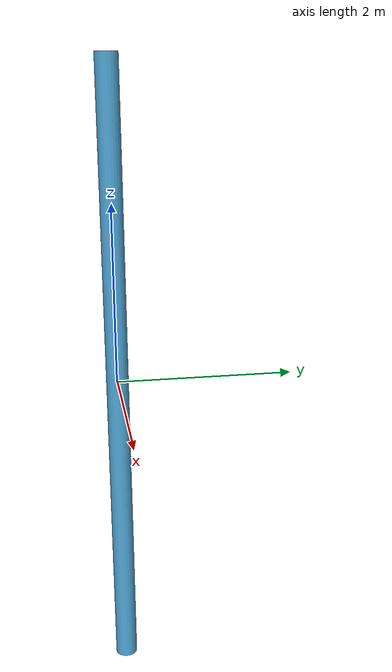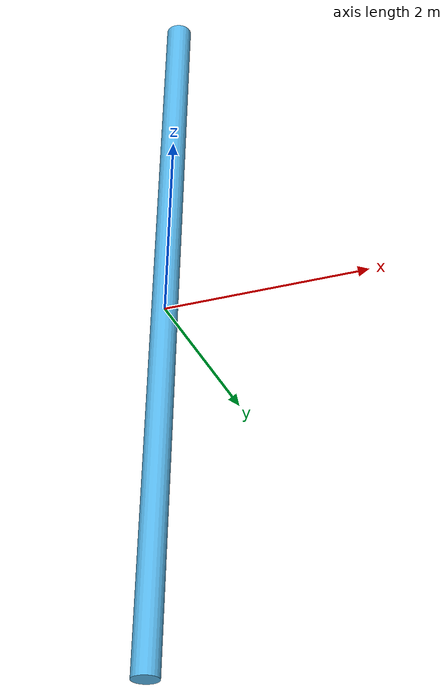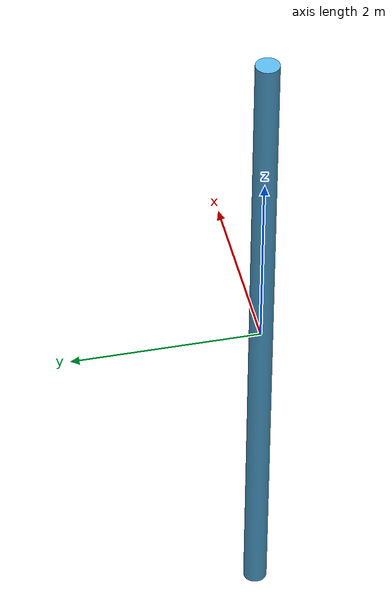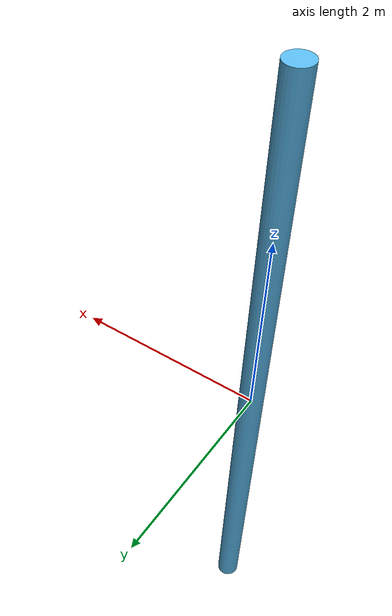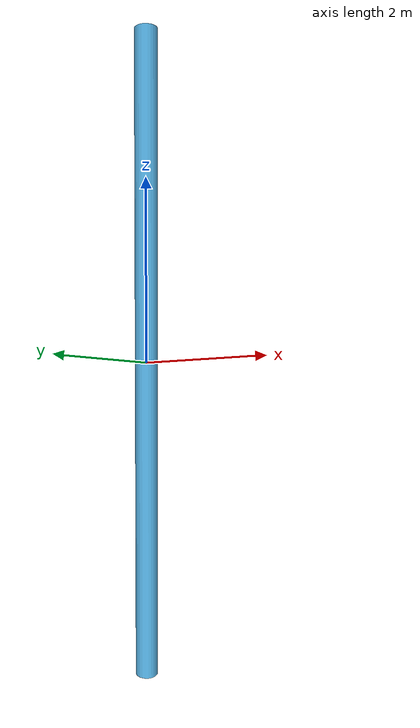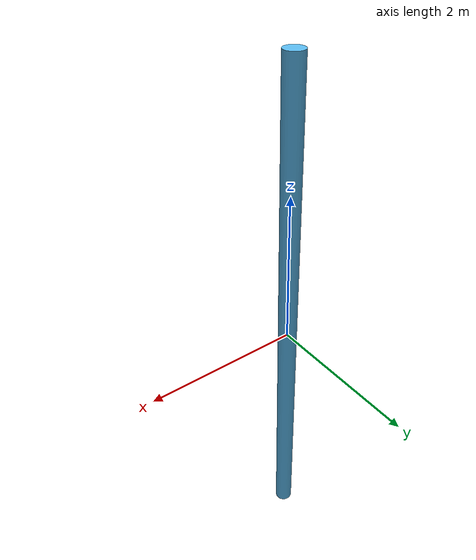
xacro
<?xml version="1.0"?>
<robot xmlns:xacro="http://www.ros.org/wiki/xacro" name="cylinder">

    <xacro:property name="sqrt2" value="1.41421356237" />

    <xacro:property name="radius" value="0.125" />
    <xacro:property name="length" value="${5 * sqrt2}" />
    <xacro:property name="m" value="1" />

    <!-- Wrap the entire robot definition in a macro -->
    <xacro:macro name="cylinder" params="xyz rpy">
        <link name="world"/>

        <link name="base">
            <visual>
                <origin xyz="0 0 0" rpy="0 0 0"/>
                <geometry>
                    <cylinder radius="${radius}" length="${length}"/>
                </geometry>
            </visual>
            <collision>
                <origin xyz="0 0 0" rpy="0 0 0"/>
                <geometry>
                    <cylinder radius="${radius}" length="${length}"/>
                </geometry>
            </collision>
            <inertial>
                <origin xyz="0 0 0" rpy="0 0 0"/>
                <mass value="${m}" />
                <inertia ixx="${1.0/12.0 * m * (3 * radius*radius + length*length)}"
                        ixy="0.0" ixz="0.0"
                        iyy="${1.0/12.0 * m * (3 * radius*radius + length*length)}"
                        iyz="0.0"
                        izz="${1.0/2.0 * m * length*length}" />
            </inertial>
        </link>

        <joint name="base_joint" type="fixed">
            <parent link="world"/>
            <child link="base"/>
            <origin xyz="${xyz}" rpy="${rpy}"/>
        </joint>
    </xacro:macro>

    <xacro:cylinder xyz="0.0 0.0 0.0" rpy="0 0 0" />
</robot>
